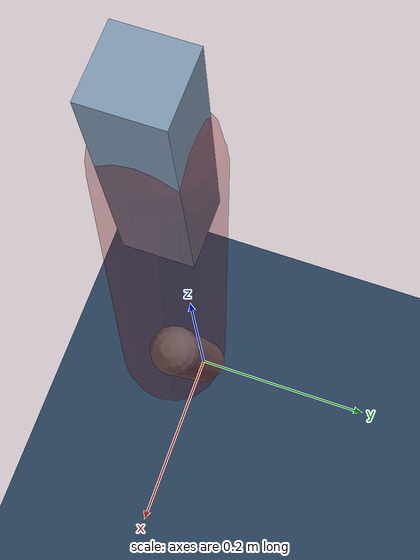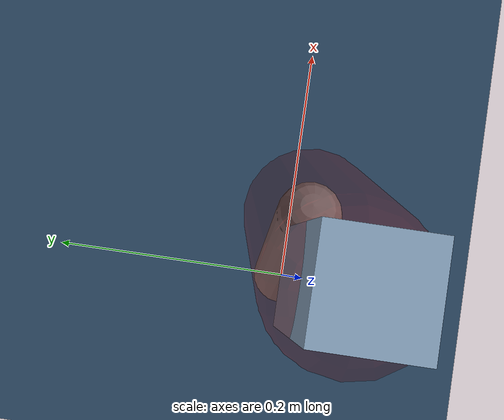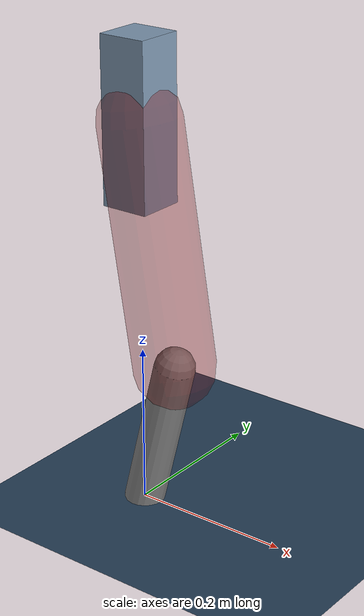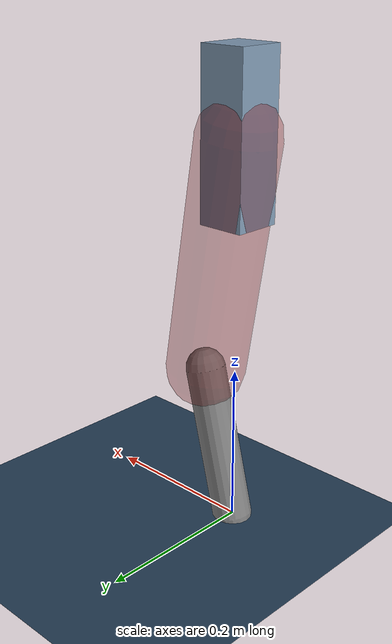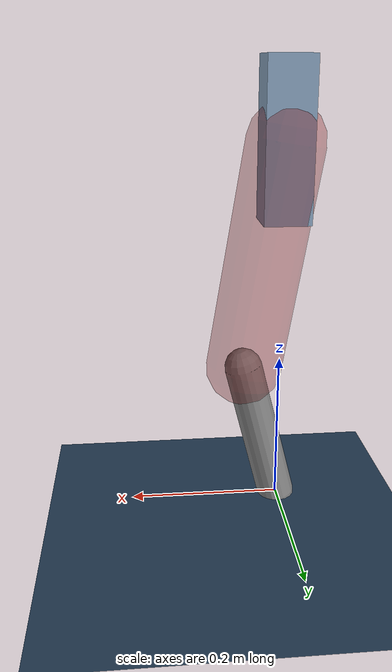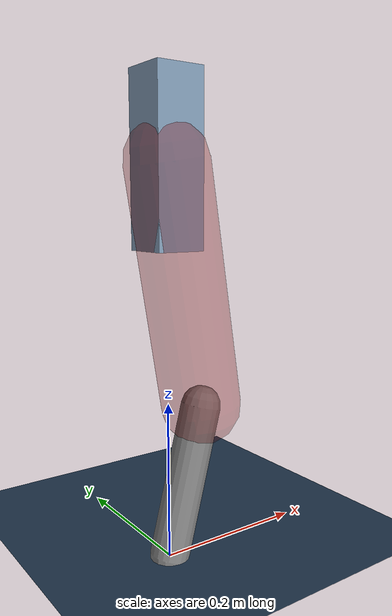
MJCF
<mujoco model="Hopper2D">
	<compiler inertiafromgeom="true" angle="radian" />
	<option timestep="0.001" integrator="implicit" cone="elliptic" solver="Newton" tolerance="1e-10" />

	<default>
		<geom contype="1" conaffinity="1" condim="3" friction="2 0.005 0.0001" solref="0.005 1" />
		<joint limited="true" damping="0.1" />
	</default>

	<asset>
		<texture name="skybox" type="skybox" builtin="gradient" rgb1=".4 .6 .8" rgb2="0 0 0" width="800" height="800" />
		<texture name="grid" type="2d" builtin="checker" rgb1=".1 .2 .3" rgb2=".2 .3 .4" width="300" height="300" mark="edge" markrgb=".2 .3 .4" />
		<material name="ground" texture="grid" texrepeat="1 1" texuniform="true" reflectance="0.1" />
		<material name="leg" rgba="0.5 0.6 0.7 1" />
	</asset>

	<worldbody>

		<geom name="floor" type="plane" size="5 5 0.25" material="ground" />

		<light directional="false" diffuse="0.8 0.8 0.8" specular="0.3 0.3 0.3" pos="0 0 2" dir="0 0 -1" />
		<light mode="targetbodycom" target="base" directional="false" diffuse="0.8 0.8 0.8" specular="0.3 0.3 0.3" pos="0 0 2" dir="0 0 -1" />

		<camera name="fixed" pos="0 -2 1" xyaxes="1 0 0 0 0 1" />
		<camera name="tracking" mode="trackcom" pos="0 -3 1" />

		<body name="root" pos="0 0 0.48496455115632775">
			<joint name="slide_x" type="slide" axis="1 0 0" range="-100 100" />
			<joint name="slide_z" type="slide" axis="0 0 1" range="0 10" />

			<body name="base" pos="0 0 0">
				<geom name="torso" type="box" size="0.03 0.03 0.1" mass="2.4539999999999997" material="leg" />

				<body name="link1" pos="0 0 0" euler="0 1.4076624379569231 0">
					<joint type="hinge" axis="0 -1 0" pos="0 0 0" name="hinge1" limited="true" range="-3.14 3.14" stiffness="0" damping="0.1" />
					<geom name="thigh" type="capsule" fromto="0 0 0 0.2980536986474803 0 0" size="0.05" rgba="0.5 0 0 0.3" mass="0.9834449863481969" />

					<body name="link2" pos="0.2980536986474803 0 0" euler="0 0.4115133684564651 0">
						<joint type="hinge" axis="0 -1 0" pos="0 0 0" name="hinge2" limited="true" range="-3.14 3.14" stiffness="0" damping="0.1" />
						<geom name="shank" type="capsule" fromto="0 0 0 0.19691085250884746 0 0" size="0.025" mass="0.3983197672579627" />

					</body>
				</body>
			</body>
		</body>
	</worldbody>

	<actuator>
		<motor name="torque1" joint="hinge1" ctrlrange="-91.32501446227896 91.32501446227896" ctrllimited="true" gear="1" />
		<motor name="torque2" joint="hinge2" ctrlrange="-90.96344134744189 90.96344134744189" ctrllimited="true" gear="1" />
	</actuator>
</mujoco>
